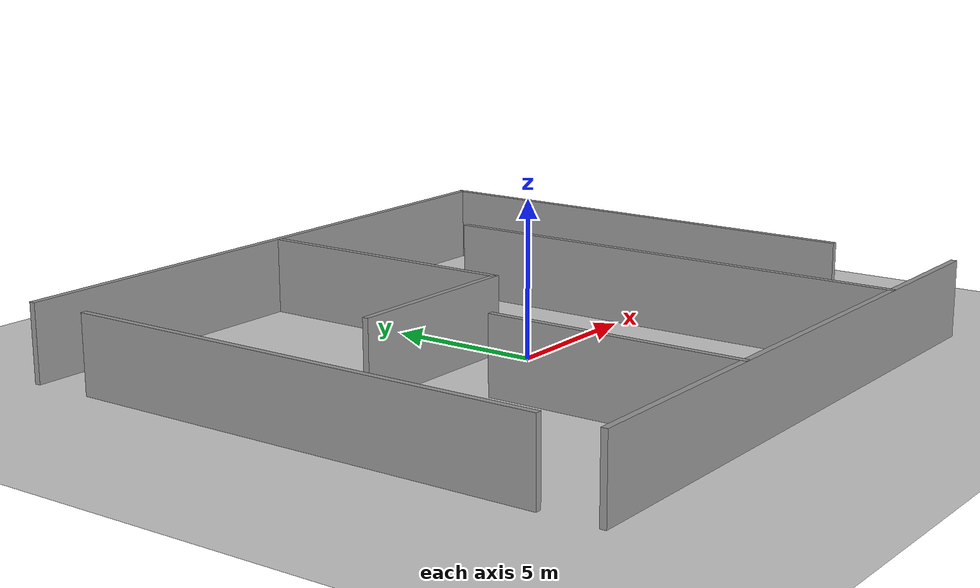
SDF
<?xml version="1.0" ?>
<sdf version='1.5'>
  <world name='default'>
    <model name='ground_plane'>
      <static>1</static>
      <link name='link'>
        <collision name='collision'>
          <geometry>
            <plane>
              <normal>0 0 1</normal>
              <size>100 100</size>
            </plane>
          </geometry>
          <surface>
            <friction>
              <ode>
                <mu>100</mu>
                <mu2>50</mu2>
              </ode>
            </friction>
            <contact>
              <ode/>
            </contact>
            <bounce/>
          </surface>
          <max_contacts>10</max_contacts>
        </collision>
        <visual name='visual'>
          <cast_shadows>0</cast_shadows>
          <geometry>
            <plane>
              <normal>0 0 1</normal>
              <size>100 100</size>
            </plane>
          </geometry>
          <material>
            <script>
              <uri>file://media/materials/scripts/gazebo.material</uri>
              <name>Gazebo/Grey</name>
            </script>
          </material>
        </visual>
        <self_collide>0</self_collide>
        <kinematic>0</kinematic>
        <gravity>1</gravity>
      </link>
    </model>
    <light name='sun' type='directional'>
      <cast_shadows>1</cast_shadows>
      <pose>0 0 10 0 -0 0</pose>
      <diffuse>0.8 0.8 0.8 1</diffuse>
      <specular>0.2 0.2 0.2 1</specular>
      <attenuation>
        <range>1000</range>
        <constant>0.9</constant>
        <linear>0.01</linear>
        <quadratic>0.001</quadratic>
      </attenuation>
      <direction>-0.5 0.1 -0.9</direction>
    </light>
    <physics name='default_physics' default='0' type='ode'>
      <ode>
        <solver>
          <type>quick</type>
          <iters>1000</iters>
          <sor>1.3</sor>
          <use_dynamic_moi_rescaling>0</use_dynamic_moi_rescaling>
        </solver>
        <constraints>
          <cfm>0</cfm>
          <erp>0.2</erp>
          <contact_max_correcting_vel>100</contact_max_correcting_vel>
          <contact_surface_layer>0.001</contact_surface_layer>
        </constraints>
      </ode>
      <max_step_size>0.005</max_step_size>
      <real_time_factor>1</real_time_factor>
      <real_time_update_rate>200</real_time_update_rate>
      <gravity>0 0 -9.8</gravity>
      <magnetic_field>5.5645e-06 2.28758e-05 -4.23884e-05</magnetic_field>
    </physics>
    <model name='indoor_block'>
      <link name='Wall_0'>
        <collision name='Wall_0_Collision'>
          <geometry>
            <box>
              <size>20.674 0.2 2.5</size>
            </box>
          </geometry>
          <pose>0 0 1.25 0 -0 0</pose>
          <max_contacts>10</max_contacts>
          <surface>
            <contact>
              <ode/>
            </contact>
            <bounce/>
            <friction>
              <ode/>
            </friction>
          </surface>
        </collision>
        <visual name='Wall_0_Visual'>
          <pose>0 0 1.25 0 -0 0</pose>
          <geometry>
            <box>
              <size>20.674 0.2 2.5</size>
            </box>
          </geometry>
          <material>
            <script>
              <uri>file://media/materials/scripts/gazebo.material</uri>
              <name>Gazebo/Grey</name>
            </script>
          </material>
        </visual>
        <pose>-0.267801 10.1622 0 0 -0 3.14159</pose>
        <self_collide>0</self_collide>
        <kinematic>0</kinematic>
        <gravity>1</gravity>
      </link>
      <link name='Wall_11'>
        <collision name='Wall_11_Collision'>
          <geometry>
            <box>
              <size>16.0181 0.2 2.5</size>
            </box>
          </geometry>
          <pose>0 0 1.25 0 -0 0</pose>
          <max_contacts>10</max_contacts>
          <surface>
            <contact>
              <ode/>
            </contact>
            <bounce/>
            <friction>
              <ode/>
            </friction>
          </surface>
        </collision>
        <visual name='Wall_11_Visual'>
          <pose>0 0 1.25 0 -0 0</pose>
          <geometry>
            <box>
              <size>16.0181 0.2 2.5</size>
            </box>
          </geometry>
          <material>
            <script>
              <uri>file://media/materials/scripts/gazebo.material</uri>
              <name>Gazebo/Grey</name>
            </script>
          </material>
        </visual>
        <pose>5.30369 -1.63248 0 0 -0 1.5708</pose>
        <self_collide>0</self_collide>
        <kinematic>0</kinematic>
        <gravity>1</gravity>
      </link>
      <link name='Wall_13'>
        <collision name='Wall_13_Collision'>
          <geometry>
            <box>
              <size>9.13492 0.2 2.5</size>
            </box>
          </geometry>
          <pose>0 0 1.25 0 -0 0</pose>
          <max_contacts>10</max_contacts>
          <surface>
            <contact>
              <ode/>
            </contact>
            <bounce/>
            <friction>
              <ode/>
            </friction>
          </surface>
        </collision>
        <visual name='Wall_13_Visual'>
          <pose>0 0 1.25 0 -0 0</pose>
          <geometry>
            <box>
              <size>9.13492 0.2 2.5</size>
            </box>
          </geometry>
          <material>
            <script>
              <uri>file://media/materials/scripts/gazebo.material</uri>
              <name>Gazebo/Grey</name>
            </script>
          </material>
        </visual>
        <pose>-0.165329 5.6298 0 0 0 -1.5708</pose>
        <self_collide>0</self_collide>
        <kinematic>0</kinematic>
        <gravity>1</gravity>
      </link>
      <link name='Wall_14'>
        <collision name='Wall_14_Collision'>
          <geometry>
            <box>
              <size>6.24578 0.2 2.5</size>
            </box>
          </geometry>
          <pose>0 0 1.25 0 -0 0</pose>
          <max_contacts>10</max_contacts>
          <surface>
            <contact>
              <ode/>
            </contact>
            <bounce/>
            <friction>
              <ode/>
            </friction>
          </surface>
        </collision>
        <visual name='Wall_14_Visual'>
          <pose>0 0 1.25 0 -0 0</pose>
          <geometry>
            <box>
              <size>6.24578 0.2 2.5</size>
            </box>
          </geometry>
          <material>
            <script>
              <uri>file://media/materials/scripts/gazebo.material</uri>
              <name>Gazebo/Grey</name>
            </script>
          </material>
        </visual>
        <pose>-3.18822 1.16234 0 0 -0 3.14159</pose>
        <self_collide>0</self_collide>
        <kinematic>0</kinematic>
        <gravity>1</gravity>
      </link>
      <link name='Wall_16'>
        <collision name='Wall_16_Collision'>
          <geometry>
            <box>
              <size>8.27888 0.2 2.5</size>
            </box>
          </geometry>
          <pose>0 0 1.25 0 -0 0</pose>
          <max_contacts>10</max_contacts>
          <surface>
            <contact>
              <ode/>
            </contact>
            <bounce/>
            <friction>
              <ode/>
            </friction>
          </surface>
        </collision>
        <visual name='Wall_16_Visual'>
          <pose>0 0 1.25 0 -0 0</pose>
          <geometry>
            <box>
              <size>8.27888 0.2 2.5</size>
            </box>
          </geometry>
          <material>
            <script>
              <uri>file://media/materials/scripts/gazebo.material</uri>
              <name>Gazebo/Grey</name>
            </script>
          </material>
        </visual>
        <pose>-3.8035 -5.49872 0 0 0 -1.5708</pose>
        <self_collide>0</self_collide>
        <kinematic>0</kinematic>
        <gravity>1</gravity>
      </link>
      <link name='Wall_4'>
        <collision name='Wall_4_Collision'>
          <geometry>
            <box>
              <size>15.7866 0.2 2.5</size>
            </box>
          </geometry>
          <pose>0 0 1.25 0 -0 0</pose>
          <max_contacts>10</max_contacts>
          <surface>
            <contact>
              <ode/>
            </contact>
            <bounce/>
            <friction>
              <ode/>
            </friction>
          </surface>
        </collision>
        <visual name='Wall_4_Visual'>
          <pose>0 0 1.25 0 -0 0</pose>
          <geometry>
            <box>
              <size>15.7866 0.2 2.5</size>
            </box>
          </geometry>
          <material>
            <script>
              <uri>file://media/materials/scripts/gazebo.material</uri>
              <name>Gazebo/Grey</name>
            </script>
          </material>
        </visual>
        <pose>-10.4578 0.226294 0 0 0 -1.5708</pose>
        <self_collide>0</self_collide>
        <kinematic>0</kinematic>
        <gravity>1</gravity>
      </link>
      <link name='Wall_5'>
        <collision name='Wall_5_Collision'>
          <geometry>
            <box>
              <size>20.5775 0.2 2.5</size>
            </box>
          </geometry>
          <pose>0 0 1.25 0 -0 0</pose>
          <max_contacts>10</max_contacts>
          <surface>
            <contact>
              <ode/>
            </contact>
            <bounce/>
            <friction>
              <ode/>
            </friction>
          </surface>
        </collision>
        <visual name='Wall_5_Visual'>
          <pose>0 0 1.25 0 -0 0</pose>
          <geometry>
            <box>
              <size>20.5775 0.2 2.5</size>
            </box>
          </geometry>
          <material>
            <script>
              <uri>file://media/materials/scripts/gazebo.material</uri>
              <name>Gazebo/Grey</name>
            </script>
          </material>
        </visual>
        <pose>-0.269083 -9.56699 0 0 -0 0</pose>
        <self_collide>0</self_collide>
        <kinematic>0</kinematic>
        <gravity>1</gravity>
      </link>
      <link name='Wall_9'>
        <collision name='Wall_9_Collision'>
          <geometry>
            <box>
              <size>15.6459 0.2 2.5</size>
            </box>
          </geometry>
          <pose>0 0 1.25 0 -0 0</pose>
          <max_contacts>10</max_contacts>
          <surface>
            <contact>
              <ode/>
            </contact>
            <bounce/>
            <friction>
              <ode/>
            </friction>
          </surface>
        </collision>
        <visual name='Wall_9_Visual'>
          <pose>0 0 1.25 0 -0 0</pose>
          <geometry>
            <box>
              <size>15.6459 0.2 2.5</size>
            </box>
          </geometry>
          <material>
            <script>
              <uri>file://media/materials/scripts/gazebo.material</uri>
              <name>Gazebo/Grey</name>
            </script>
          </material>
        </visual>
        <pose>10.0957 2.46163 0 0 0 -1.5708</pose>
        <self_collide>0</self_collide>
        <kinematic>0</kinematic>
        <gravity>1</gravity>
      </link>
      <static>1</static>
    </model>
    <scene>
      <ambient>0.4 0.4 0.4 1</ambient>
      <background>0.7 0.7 0.7 1</background>
      <shadows>1</shadows>
    </scene>
    <spherical_coordinates>
      <surface_model>EARTH_WGS84</surface_model>
      <latitude_deg>0</latitude_deg>
      <longitude_deg>0</longitude_deg>
      <elevation>0</elevation>
      <heading_deg>0</heading_deg>
    </spherical_coordinates>
    <gui fullscreen='0'>
      <camera name='user_camera'>
        <pose>-19.528 -7.09969 14.4001 -2.84717e-18 0.915644 0.028194</pose>
        <view_controller>orbit</view_controller>
      </camera>
    </gui>
  </world>
</sdf>
